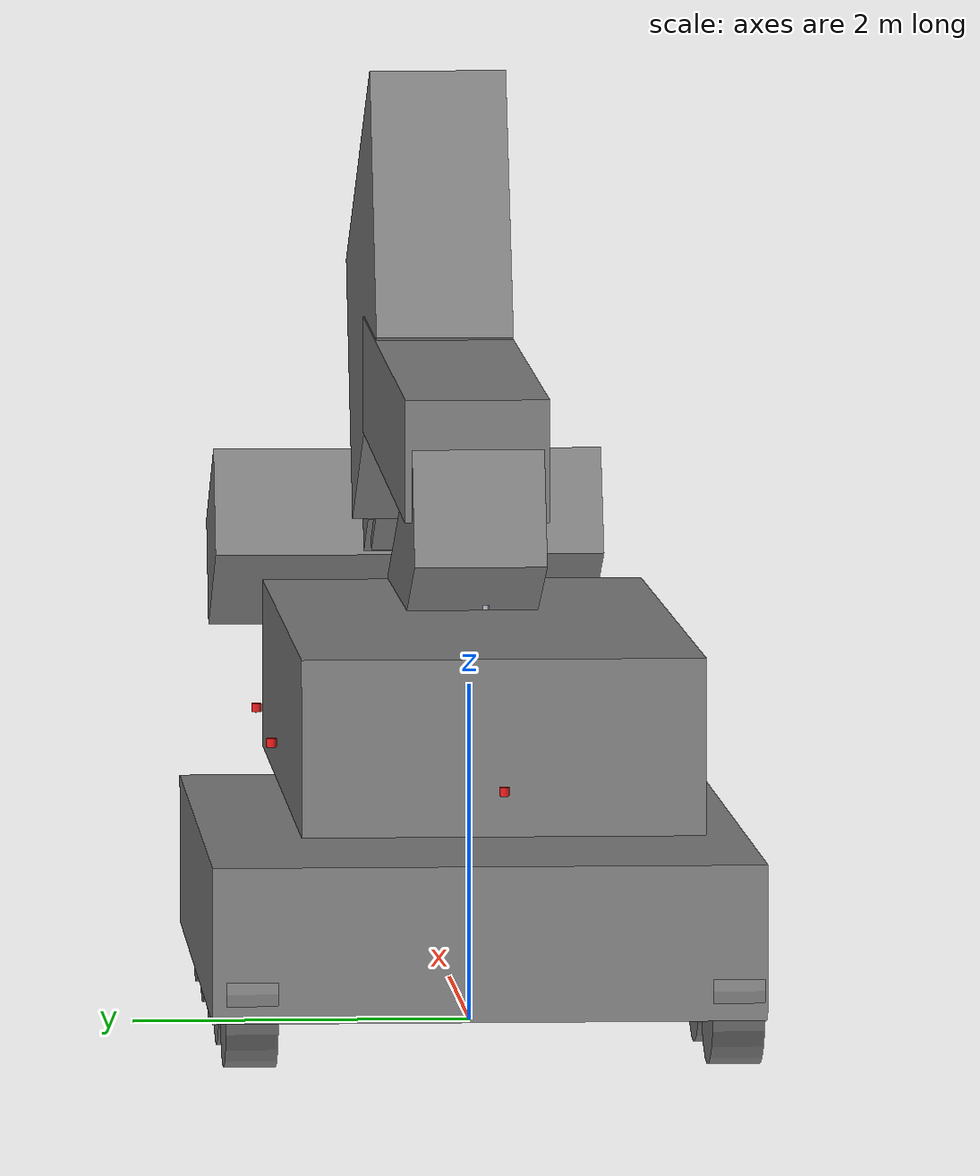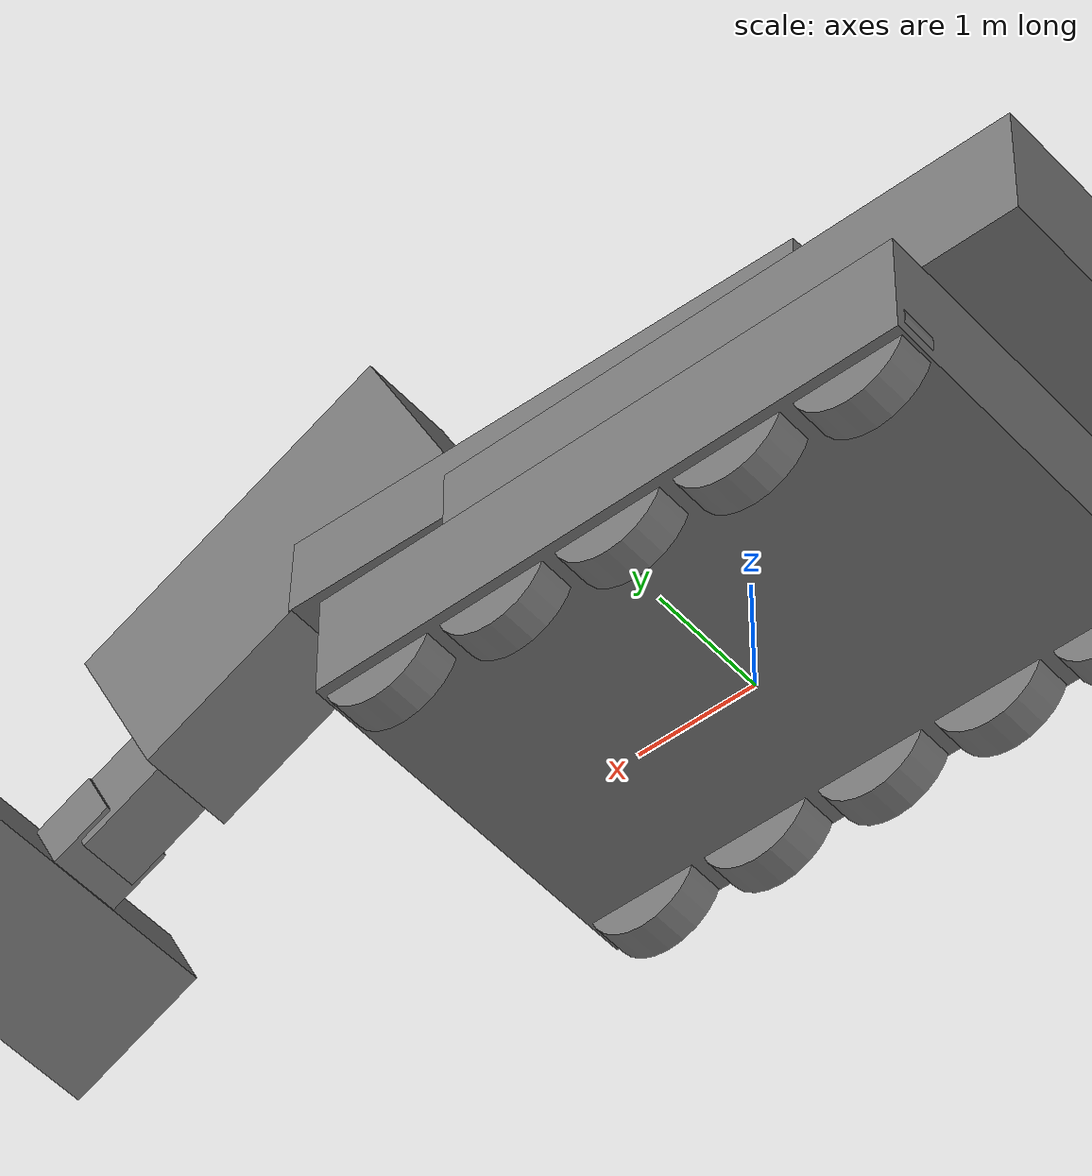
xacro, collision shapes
<?xml version="1.0" encoding="utf-8"?>
<robot name="clearing_robot" xmlns:xacro="http://ros.org/wiki/xacro">

  <xacro:include filename="$(find multimap_nav_simulation)/robot/sensors/lidar_3d.xacro"/>
  <!-- A moderate scan rate keeps the original five side sensors affordable. -->
  <xacro:property name="lidar_hz" value="10.0"/>
  <xacro:property name="lidar_samples" value="720"/>
  <xacro:property name="lidar_max_range" value="30.0"/>

  <link name="base_footprint"/>

  <joint name="base_footprint_joint" type="fixed">
    <parent link="base_link"/>
    <child link="base_footprint"/>
    <origin xyz="0 0 0" rpy="0 0 0"/>
  </joint>

  <link name="base_link">
    <inertial>
      <origin xyz="0.0110947986 0.0314803963 0.598827115" rpy="0 0 0"/>
      <mass value="13000"/>
      <inertia ixx="12116.6164" ixy="-0.0945527211" ixz="-24.048698"
               iyy="23395.8661" iyz="8.93522898" izz="32244.8535"/>
    </inertial>

    <visual>
      <origin xyz="0 0 0" rpy="0 0 0"/>
      <geometry>
        <mesh filename="file://$(find multimap_nav_simulation)/meshes/clearing_robot/base_link.STL"/>
      </geometry>
      <material name="">
        <color rgba="0.5 0.5 0.5 1"/>
      </material>
    </visual>

    <collision name="chassis_collision">
      <origin xyz="0.004 0.0325 0.75" rpy="0 0 0"/>
      <geometry><box size="4.95 3.19 0.90"/></geometry>
    </collision>

  </link>

  <link name="left_wheel_back">
    <inertial>
      <mass value="500.0"/>
      <origin xyz="0 0 0"/>
      <inertia ixx="32.55" ixy="0.0" ixz="0.0"
               iyy="57.6" iyz="0.0"
               izz="32.55"/>
    </inertial>

    <visual>
      <origin xyz="0 0 0" rpy="1.5708 0 0"/>
      <geometry>
        <cylinder length="0.3" radius="0.48"/>
      </geometry>
      <material name="">
        <color rgba="0.5 0.5 0.5 1"/>
      </material>
    </visual>

    <collision>
      <origin xyz="0 0 0" rpy="1.5708 0 0"/>
      <geometry>
        <cylinder length="0.3" radius="0.48"/>
      </geometry>
    </collision>
  </link>

  <link name="left_wheel_middle">
    <inertial>
      <mass value="500.0"/>
      <origin xyz="0 0 0"/>
      <inertia ixx="32.55" ixy="0.0" ixz="0.0"
               iyy="57.6" iyz="0.0"
               izz="32.55"/>
    </inertial>

    <visual>
      <origin xyz="0 0 0" rpy="1.5708 0 0"/>
      <geometry>
        <cylinder length="0.3" radius="0.48"/>
      </geometry>
      <material name="">
        <color rgba="0.5 0.5 0.5 1"/>
      </material>
    </visual>

    <collision>
      <origin xyz="0 0 0" rpy="1.5708 0 0"/>
      <geometry>
        <cylinder length="0.3" radius="0.48"/>
      </geometry>
    </collision>
  </link>

  <link name="left_wheel_middle1">
    <inertial>
      <mass value="500.0"/>
      <origin xyz="0 0 0"/>
      <inertia ixx="32.55" ixy="0.0" ixz="0.0"
               iyy="57.6" iyz="0.0"
               izz="32.55"/>
    </inertial>

    <visual>
      <origin xyz="0 0 0" rpy="1.5708 0 0"/>
      <geometry>
        <cylinder length="0.3" radius="0.48"/>
      </geometry>
      <material name="">
        <color rgba="0.5 0.5 0.5 1"/>
      </material>
    </visual>

    <collision>
      <origin xyz="0 0 0" rpy="1.5708 0 0"/>
      <geometry>
        <cylinder length="0.3" radius="0.48"/>
      </geometry>
    </collision>
  </link>

  <link name="left_wheel_middle2">
    <inertial>
      <mass value="500.0"/>
      <origin xyz="0 0 0"/>
      <inertia ixx="32.55" ixy="0.0" ixz="0.0"
               iyy="57.6" iyz="0.0"
               izz="32.55"/>
    </inertial>

    <visual>
      <origin xyz="0 0 0" rpy="1.5708 0 0"/>
      <geometry>
        <cylinder length="0.3" radius="0.48"/>
      </geometry>
      <material name="">
        <color rgba="0.5 0.5 0.5 1"/>
      </material>
    </visual>

    <collision>
      <origin xyz="0 0 0" rpy="1.5708 0 0"/>
      <geometry>
        <cylinder length="0.3" radius="0.48"/>
      </geometry>
    </collision>
  </link>

  <link name="left_wheel_front">
    <inertial>
      <mass value="500.0"/>
      <origin xyz="0 0 0"/>
      <inertia ixx="32.55" ixy="0.0" ixz="0.0"
               iyy="57.6" iyz="0.0"
               izz="32.55"/>
    </inertial>

    <visual>
      <origin xyz="0 0 0" rpy="1.5708 0 0"/>
      <geometry>
        <cylinder length="0.3" radius="0.48"/>
      </geometry>
      <material name="">
        <color rgba="0.5 0.5 0.5 1"/>
      </material>
    </visual>

    <collision>
      <origin xyz="0 0 0" rpy="1.5708 0 0"/>
      <geometry>
        <cylinder length="0.3" radius="0.48"/>
      </geometry>
    </collision>
  </link>

  <link name="right_wheel_back">
    <inertial>
      <mass value="500.0"/>
      <origin xyz="0 0 0"/>
      <inertia ixx="32.55" ixy="0.0" ixz="0.0"
               iyy="57.6" iyz="0.0"
               izz="32.55"/>
    </inertial>

    <visual>
      <origin xyz="0 0 0" rpy="1.5708 0 0"/>
      <geometry>
        <cylinder length="0.3" radius="0.48"/>
      </geometry>
      <material name="">
        <color rgba="0.5 0.5 0.5 1"/>
      </material>
    </visual>

    <collision>
      <origin xyz="0 0 0" rpy="1.5708 0 0"/>
      <geometry>
        <cylinder length="0.3" radius="0.48"/>
      </geometry>
    </collision>
  </link>

  <link name="right_wheel_middle">
    <inertial>
      <mass value="500.0"/>
      <origin xyz="0 0 0"/>
      <inertia ixx="32.55" ixy="0.0" ixz="0.0"
               iyy="57.6" iyz="0.0"
               izz="32.55"/>
    </inertial>

    <visual>
      <origin xyz="0 0 0" rpy="1.5708 0 0"/>
      <geometry>
        <cylinder length="0.3" radius="0.48"/>
      </geometry>
      <material name="">
        <color rgba="0.5 0.5 0.5 1"/>
      </material>
    </visual>

    <collision>
      <origin xyz="0 0 0" rpy="1.5708 0 0"/>
      <geometry>
        <cylinder length="0.3" radius="0.48"/>
      </geometry>
    </collision>
  </link>

  <link name="right_wheel_middle1">
    <inertial>
      <mass value="500.0"/>
      <origin xyz="0 0 0"/>
      <inertia ixx="32.55" ixy="0.0" ixz="0.0"
               iyy="57.6" iyz="0.0"
               izz="32.55"/>
    </inertial>

    <visual>
      <origin xyz="0 0 0" rpy="1.5708 0 0"/>
      <geometry>
        <cylinder length="0.3" radius="0.48"/>
      </geometry>
      <material name="">
        <color rgba="0.5 0.5 0.5 1"/>
      </material>
    </visual>

    <collision>
      <origin xyz="0 0 0" rpy="1.5708 0 0"/>
      <geometry>
        <cylinder length="0.3" radius="0.48"/>
      </geometry>
    </collision>
  </link>

  <link name="right_wheel_middle2">
    <inertial>
      <mass value="500.0"/>
      <origin xyz="0 0 0"/>
      <inertia ixx="32.55" ixy="0.0" ixz="0.0"
               iyy="57.6" iyz="0.0"
               izz="32.55"/>
    </inertial>

    <visual>
      <origin xyz="0 0 0" rpy="1.5708 0 0"/>
      <geometry>
        <cylinder length="0.3" radius="0.48"/>
      </geometry>
      <material name="">
        <color rgba="0.5 0.5 0.5 1"/>
      </material>
    </visual>

    <collision>
      <origin xyz="0 0 0" rpy="1.5708 0 0"/>
      <geometry>
        <cylinder length="0.3" radius="0.48"/>
      </geometry>
    </collision>
  </link>

  <link name="right_wheel_front">
    <inertial>
      <mass value="500.0"/>
      <origin xyz="0 0 0"/>
      <inertia ixx="32.55" ixy="0.0" ixz="0.0"
               iyy="57.6" iyz="0.0"
               izz="32.55"/>
    </inertial>

    <visual>
      <origin xyz="0 0 0" rpy="1.5708 0 0"/>
      <geometry>
        <cylinder length="0.3" radius="0.48"/>
      </geometry>
      <material name="">
        <color rgba="0.5 0.5 0.5 1"/>
      </material>
    </visual>

    <collision>
      <origin xyz="0 0 0" rpy="1.5708 0 0"/>
      <geometry>
        <cylinder length="0.3" radius="0.48"/>
      </geometry>
    </collision>
  </link>

  <joint name="left_wheel_front_joint" type="continuous">
    <parent link="base_link"/>
    <child link="left_wheel_front"/>
    <origin xyz="2.0 1.4 0.47" rpy="0 0 0"/>
    <axis xyz="0 1 0"/>
    <dynamics damping="2.0" friction="0.0"/>
    <!-- velocity limit is required by rqt_joint_trajectory_controller's URDF parser -->
    <limit effort="100" velocity="10"/>
  </joint>

  <joint name="left_wheel_middle_joint" type="continuous">
    <parent link="base_link"/>
    <child link="left_wheel_middle"/>
    <origin xyz="0 1.4 0.47" rpy="0 0 0"/>
    <axis xyz="0 1 0"/>
    <dynamics damping="2.0" friction="0.0"/>
    <!-- velocity limit is required by rqt_joint_trajectory_controller's URDF parser -->
    <limit effort="100" velocity="10"/>
  </joint>

  <joint name="left_wheel_middle1_joint" type="continuous">
    <parent link="base_link"/>
    <child link="left_wheel_middle1"/>
    <origin xyz="1 1.4 0.47" rpy="0 0 0"/>
    <axis xyz="0 1 0"/>
    <dynamics damping="2.0" friction="0.0"/>
    <!-- velocity limit is required by rqt_joint_trajectory_controller's URDF parser -->
    <limit effort="100" velocity="10"/>
  </joint>

  <joint name="left_wheel_middle2_joint" type="continuous">
    <parent link="base_link"/>
    <child link="left_wheel_middle2"/>
    <origin xyz="-1 1.4 0.47" rpy="0 0 0"/>
    <axis xyz="0 1 0"/>
    <dynamics damping="2.0" friction="0.0"/>
    <!-- velocity limit is required by rqt_joint_trajectory_controller's URDF parser -->
    <limit effort="100" velocity="10"/>
  </joint>

  <joint name="left_wheel_back_joint" type="continuous">
    <parent link="base_link"/>
    <child link="left_wheel_back"/>
    <origin xyz="-2.0 1.4 0.47" rpy="0 0 0"/>
    <axis xyz="0 1 0"/>
    <dynamics damping="2.0" friction="0.0"/>
    <!-- velocity limit is required by rqt_joint_trajectory_controller's URDF parser -->
    <limit effort="100" velocity="10"/>
  </joint>

  <joint name="right_wheel_back_joint" type="continuous">
    <parent link="base_link"/>
    <child link="right_wheel_back"/>
    <origin xyz="-2.0 -1.4 0.47" rpy="0 0 0"/>
    <axis xyz="0 1 0"/>
    <dynamics damping="2.0" friction="0.0"/>
    <!-- velocity limit is required by rqt_joint_trajectory_controller's URDF parser -->
    <limit effort="100" velocity="10"/>
  </joint>

  <joint name="right_wheel_middle_joint" type="continuous">
    <parent link="base_link"/>
    <child link="right_wheel_middle"/>
    <origin xyz="0 -1.4 0.47" rpy="0 0 0"/>
    <axis xyz="0 1 0"/>
    <dynamics damping="2.0" friction="0.0"/>
    <!-- velocity limit is required by rqt_joint_trajectory_controller's URDF parser -->
    <limit effort="100" velocity="10"/>
  </joint>

  <joint name="right_wheel_middle1_joint" type="continuous">
    <parent link="base_link"/>
    <child link="right_wheel_middle1"/>
    <origin xyz="1 -1.4 0.47" rpy="0 0 0"/>
    <axis xyz="0 1 0"/>
    <dynamics damping="2.0" friction="0.0"/>
    <!-- velocity limit is required by rqt_joint_trajectory_controller's URDF parser -->
    <limit effort="100" velocity="10"/>
  </joint>

  <joint name="right_wheel_middle2_joint" type="continuous">
    <parent link="base_link"/>
    <child link="right_wheel_middle2"/>
    <origin xyz="-1 -1.4 0.47" rpy="0 0 0"/>
    <axis xyz="0 1 0"/>
    <dynamics damping="2.0" friction="0.0"/>
    <!-- velocity limit is required by rqt_joint_trajectory_controller's URDF parser -->
    <limit effort="100" velocity="10"/>
  </joint>

  <joint name="right_wheel_front_joint" type="continuous">
    <parent link="base_link"/>
    <child link="right_wheel_front"/>
    <origin xyz="2.0 -1.4 0.47" rpy="0 0 0"/>
    <axis xyz="0 1 0"/>
    <dynamics damping="2.0" friction="0.0"/>
    <!-- velocity limit is required by rqt_joint_trajectory_controller's URDF parser -->
    <limit effort="100" velocity="10"/>
  </joint>

  <!-- 机械臂部分 -->
  <link name="link1">
    <inertial>
      <origin xyz="-0.26630551 -2.46152979e-17 -0.555507403" rpy="0 0 0"/>
      <mass value="6000"/>
      <inertia ixx="3404.00724" ixy="0" ixz="-689.206256"
               iyy="11159.2513" iyz="0" izz="13988.6592"/>
    </inertial>
    <visual>
      <origin xyz="0 0 0" rpy="0 0 0" />
      <geometry>
        <mesh filename="file://$(find multimap_nav_simulation)/meshes/clearing_robot/PingTai.STL" />
      </geometry>
      <material name="">
        <color rgba="0.5 0.5 0.5 1"/>
      </material>
    </visual>
    <!-- STL collisions crash gzserver in ODE ray-sensor checks. The box is
         narrower than the mesh (y +-1.4) so the rslidar_* origins stay outside. -->
    <collision>
      <origin xyz="-0.675 0 -0.357" rpy="0 0 0" />
      <geometry><box size="4.95 2.3 1.013"/></geometry>
    </collision>
  </link>

  <joint name="joint1" type="revolute">
    <origin xyz="0 0 2.313" rpy="0 0 0" />
    <parent link="base_link" />
    <child link="link1" />
    <axis xyz="0 0 1" />
    <limit lower="-3.14" upper="3.14" effort="100" velocity="5" />
  </joint>

  <link name="link2">
    <inertial>
      <origin xyz="1.27370026 -0.124614766 1.35128923e-07" rpy="0 0 0"/>
      <mass value="1280"/>
      <inertia ixx="87.7149162" ixy="43.4559098" ixz="-0.000126827583"
               iyy="704.457612" iyz="-4.32401178e-05" izz="693.266344"/>
    </inertial>
    <visual>
      <origin xyz="0 0 0" rpy="0 0 0" />
      <geometry>
        <mesh filename="file://$(find multimap_nav_simulation)/meshes/clearing_robot/DaBi.STL" />
      </geometry>
      <material name="">
        <color rgba="0.5 0.5 0.5 1"/>
      </material>
    </visual>
    <!-- Arm collisions (link2..link7) are the STL bounding boxes; STL
         collisions crash gzserver in ODE ray-sensor checks. -->
    <collision>
      <origin xyz="1.285 -0.170 0.000" rpy="0 0 0" />
      <geometry><box size="2.788 0.780 0.776"/></geometry>
    </collision>
  </link>

  <joint name="joint2" type="revolute">
    <origin xyz="1.65 0 0" rpy="-1.5708 -2.760 0" />
    <parent link="link1" />
    <child link="link2" />
    <axis xyz="0 0 1" />
    <limit lower="0" upper="1.1687" effort="100" velocity="5" />
  </joint>

  <link name="link3">
    <inertial>
      <origin xyz="2.13204457 -0.0592608975 0.00440016614" rpy="0 0 0"/>
      <mass value="1402"/>
      <inertia ixx="77.3925584" ixy="-5.23281886" ixz="0.223344386"
               iyy="1949.69327" iyz="-0.00727808857" izz="1940.91237"/>
    </inertial>
    <visual>
      <origin xyz="0 0 0" rpy="0 0 0" />
      <geometry>
        <mesh filename="file://$(find multimap_nav_simulation)/meshes/clearing_robot/zhongbi.STL" />
      </geometry>
      <material name="">
        <color rgba="0.5 0.5 0.5 1"/>
      </material>
    </visual>
    <collision>
      <origin xyz="2.250 -0.148 0.005" rpy="0 0 0" />
      <geometry><box size="4.700 0.724 0.848"/></geometry>
    </collision>
  </link>

  <joint name="joint3" type="revolute">
    <origin xyz="2.5 0 0" rpy="0 0 2.7263" />
    <parent link="link2" />
    <child link="link3" />
    <axis xyz="0 0 1" />
    <limit lower="-1.6895" upper="0" effort="100" velocity="5" />
  </joint>

  <link name="link4">
    <inertial>
      <origin xyz="0.144338 -0.627142103 -0.0396293599" rpy="0 0 0"/>
      <mass value="700"/>
      <inertia ixx="120.375335" ixy="-87.2852653" ixz="-18.0183481"
               iyy="414.556747" iyz="-9.23615827" izz="485.13141"/>
    </inertial>
    <visual>
      <origin xyz="0 0 0" rpy="0 0 0" />
      <geometry>
        <mesh filename="file://$(find multimap_nav_simulation)/meshes/clearing_robot/xiaobi.STL" />
      </geometry>
      <material name="">
        <color rgba="0.5 0.5 0.5 1"/>
      </material>
    </visual>
    <collision>
      <origin xyz="0.125 -0.727 0.003" rpy="0 0 0" />
      <geometry><box size="3.130 1.767 0.839"/></geometry>
    </collision>
  </link>

  <joint name="joint4" type="revolute">
    <origin xyz="4.5 0 0" rpy="0 0 0.4815" />
    <parent link="link3" />
    <child link="link4" />
    <axis xyz="0 0 1" />
    <limit lower="0" upper="1.6265" effort="100" velocity="5" />
  </joint>

  <link name="link5">
    <inertial>
      <origin xyz="0.183389268 0.000891158583 0.00128422761" rpy="0 0 0"/>
      <mass value="525"/>
      <inertia ixx="23.7986984" ixy="-0.0985816319" ixz="0.0870947509"
               iyy="35.612472" iyz="0.00448312687" izz="32.823992"/>
    </inertial>
    <visual>
      <origin xyz="0 0 0" rpy="0 0 0" />
      <geometry>
        <mesh filename="file://$(find multimap_nav_simulation)/meshes/clearing_robot/R2.STL" />
      </geometry>
      <material name="">
        <color rgba="0.5 0.5 0.5 1"/>
      </material>
    </visual>
    <collision>
      <origin xyz="0.235 0.000 0.000" rpy="0 0 0" />
      <geometry><box size="0.801 0.524 0.621"/></geometry>
    </collision>
  </link>

  <joint name="joint5" type="revolute">
    <origin xyz="1.855 -0.239 0" rpy="1.5708 0 0" />
    <parent link="link4" />
    <child link="link5" />
    <axis xyz="0 0 1" />
    <limit lower="-1.58" upper="1.58" effort="100" velocity="5" />
  </joint>

  <link name="link6">
    <inertial>
      <origin xyz="0.0252308586 0.17131212 -0.01393312" rpy="0 0 0"/>
      <mass value="580"/>
      <inertia ixx="30.4273422" ixy="-1.5814964" ixz="0.816006364"
               iyy="24.4154256" iyz="0.786265784" izz="21.3190364"/>
    </inertial>
    <visual>
      <origin xyz="0 0 0" rpy="0 0 0" />
      <geometry>
        <mesh filename="file://$(find multimap_nav_simulation)/meshes/clearing_robot/R1.STL" />
      </geometry>
      <material name="">
        <color rgba="0.5 0.5 0.5 1"/>
      </material>
    </visual>
    <collision>
      <origin xyz="0.037 0.136 -0.023" rpy="0 0 0" />
      <geometry><box size="0.519 0.576 0.640"/></geometry>
    </collision>
  </link>

  <joint name="joint6" type="revolute">
    <origin xyz="0.469 0 0" rpy="-1.5708 -1.5708 0" />
    <parent link="link5" />
    <child link="link6" />
    <axis xyz="0 0 1" />
    <limit lower="-1.58" upper="1.58" effort="100" velocity="3" />
  </joint>

  <link name="link7">
    <inertial>
      <origin xyz="3.26484326e-05 0.186943813 0.508338592" rpy="0 0 0"/>
      <mass value="720"/>
      <inertia ixx="92.026891" ixy="-2.52810726e-05" ixz="-1.05435695e-05"
               iyy="407.855369" iyz="-22.6800914" izz="358.651723"/>
    </inertial>
    <visual>
      <origin xyz="0 0 0" rpy="0 0 0" />
      <geometry>
        <mesh filename="file://$(find multimap_nav_simulation)/meshes/clearing_robot/candou.STL" />
      </geometry>
      <material name="">
        <color rgba="0.5 0.5 0.5 1"/>
      </material>
    </visual>
    <collision>
      <origin xyz="0.000 0.116 0.618" rpy="0 0 0" />
      <geometry><box size="2.500 0.732 1.285"/></geometry>
    </collision>
  </link>

  <joint name="joint7" type="revolute">
    <origin xyz="0 0.438 0" rpy="-1.5708 -1.5708 0" />
    <parent link="link6" />
    <child link="link7" />
    <axis xyz="0 0 1" />
    <limit lower="-3.14" upper="3.14" effort="100" velocity="3" />
  </joint>

  <!-- IMU -->
  <link name="imu_link">
    <visual>
      <geometry><box size="0.05 0.05 0.05"/></geometry>
    </visual>
  </link>

  <joint name="imu_joint" type="fixed">
    <parent link="base_link"/>
    <child link="imu_link"/>
    <origin xyz="0 0 1.65" rpy="0 0 0"/>
  </joint>

  <!-- 传动系统 -->
  <transmission name="left_back_trans">
    <type>transmission_interface/SimpleTransmission</type>
    <joint name="left_wheel_back_joint">
      <hardwareInterface>hardware_interface/velocity</hardwareInterface>
    </joint>
    <actuator name="left_back_motor">
      <hardwareInterface>hardware_interface/velocity</hardwareInterface>
      <mechanicalReduction>1</mechanicalReduction>
    </actuator>
  </transmission>

  <transmission name="left_middle_trans">
    <type>transmission_interface/SimpleTransmission</type>
    <joint name="left_wheel_middle_joint">
      <hardwareInterface>hardware_interface/velocity</hardwareInterface>
    </joint>
    <actuator name="left_middle_motor">
      <hardwareInterface>hardware_interface/velocity</hardwareInterface>
      <mechanicalReduction>1</mechanicalReduction>
    </actuator>
  </transmission>

  <transmission name="left_middle1_trans">
    <type>transmission_interface/SimpleTransmission</type>
    <joint name="left_wheel_middle1_joint">
      <hardwareInterface>hardware_interface/velocity</hardwareInterface>
    </joint>
    <actuator name="left_middle1_motor">
      <hardwareInterface>hardware_interface/velocity</hardwareInterface>
      <mechanicalReduction>1</mechanicalReduction>
    </actuator>
  </transmission>

  <transmission name="left_middle2_trans">
    <type>transmission_interface/SimpleTransmission</type>
    <joint name="left_wheel_middle2_joint">
      <hardwareInterface>hardware_interface/velocity</hardwareInterface>
    </joint>
    <actuator name="left_middle2_motor">
      <hardwareInterface>hardware_interface/velocity</hardwareInterface>
      <mechanicalReduction>1</mechanicalReduction>
    </actuator>
  </transmission>

  <transmission name="left_front_trans">
    <type>transmission_interface/SimpleTransmission</type>
    <joint name="left_wheel_front_joint">
      <hardwareInterface>hardware_interface/velocity</hardwareInterface>
    </joint>
    <actuator name="left_front_motor">
      <hardwareInterface>hardware_interface/velocity</hardwareInterface>
      <mechanicalReduction>1</mechanicalReduction>
    </actuator>
  </transmission>

  <transmission name="right_back_trans">
    <type>transmission_interface/SimpleTransmission</type>
    <joint name="right_wheel_back_joint">
      <hardwareInterface>hardware_interface/velocity</hardwareInterface>
    </joint>
    <actuator name="right_back_motor">
      <hardwareInterface>hardware_interface/velocity</hardwareInterface>
      <mechanicalReduction>1</mechanicalReduction>
    </actuator>
  </transmission>

  <transmission name="right_middle_trans">
    <type>transmission_interface/SimpleTransmission</type>
    <joint name="right_wheel_middle_joint">
      <hardwareInterface>hardware_interface/velocity</hardwareInterface>
    </joint>
    <actuator name="right_middle_motor">
      <hardwareInterface>hardware_interface/velocity</hardwareInterface>
      <mechanicalReduction>1</mechanicalReduction>
    </actuator>
  </transmission>

  <transmission name="right_middle1_trans">
    <type>transmission_interface/SimpleTransmission</type>
    <joint name="right_wheel_middle1_joint">
      <hardwareInterface>hardware_interface/velocity</hardwareInterface>
    </joint>
    <actuator name="right_middle1_motor">
      <hardwareInterface>hardware_interface/velocity</hardwareInterface>
      <mechanicalReduction>1</mechanicalReduction>
    </actuator>
  </transmission>

  <transmission name="right_middle2_trans">
    <type>transmission_interface/SimpleTransmission</type>
    <joint name="right_wheel_middle2_joint">
      <hardwareInterface>hardware_interface/velocity</hardwareInterface>
    </joint>
    <actuator name="right_middle2_motor">
      <hardwareInterface>hardware_interface/velocity</hardwareInterface>
      <mechanicalReduction>1</mechanicalReduction>
    </actuator>
  </transmission>

  <transmission name="right_front_trans">
    <type>transmission_interface/SimpleTransmission</type>
    <joint name="right_wheel_front_joint">
      <hardwareInterface>hardware_interface/velocity</hardwareInterface>
    </joint>
    <actuator name="right_front_motor">
      <hardwareInterface>hardware_interface/velocity</hardwareInterface>
      <mechanicalReduction>1</mechanicalReduction>
    </actuator>
  </transmission>

  <xacro:macro name="arm_joint_transmission" params="name">
    <transmission name="${name}_trans">
      <type>transmission_interface/SimpleTransmission</type>
      <joint name="${name}">
        <hardwareInterface>hardware_interface/PositionJointInterface</hardwareInterface>
      </joint>
      <actuator name="${name}_motor">
        <hardwareInterface>hardware_interface/PositionJointInterface</hardwareInterface>
        <mechanicalReduction>1</mechanicalReduction>
      </actuator>
    </transmission>
  </xacro:macro>
  <xacro:arm_joint_transmission name="joint1"/>
  <xacro:arm_joint_transmission name="joint2"/>
  <xacro:arm_joint_transmission name="joint3"/>
  <xacro:arm_joint_transmission name="joint4"/>
  <xacro:arm_joint_transmission name="joint5"/>
  <xacro:arm_joint_transmission name="joint6"/>
  <xacro:arm_joint_transmission name="joint7"/>

  <!-- ROS 2 控制系统 -->
  <ros2_control name="whc_control" type="system">
    <hardware>
      <plugin>gazebo_ros2_control/GazeboSystem</plugin>
    </hardware>

    <joint name="left_wheel_back_joint">
      <command_interface name="velocity"/>
      <state_interface name="position"/>
      <state_interface name="velocity"/>
    </joint>

    <joint name="left_wheel_middle_joint">
      <command_interface name="velocity"/>
      <state_interface name="position"/>
      <state_interface name="velocity"/>
    </joint>

    <joint name="left_wheel_middle1_joint">
      <command_interface name="velocity"/>
      <state_interface name="position"/>
      <state_interface name="velocity"/>
    </joint>

    <joint name="left_wheel_middle2_joint">
      <command_interface name="velocity"/>
      <state_interface name="position"/>
      <state_interface name="velocity"/>
    </joint>

    <joint name="left_wheel_front_joint">
      <command_interface name="velocity"/>
      <state_interface name="position"/>
      <state_interface name="velocity"/>
    </joint>

    <joint name="right_wheel_back_joint">
      <command_interface name="velocity"/>
      <state_interface name="position"/>
      <state_interface name="velocity"/>
    </joint>

    <joint name="right_wheel_middle_joint">
      <command_interface name="velocity"/>
      <state_interface name="position"/>
      <state_interface name="velocity"/>
    </joint>

    <joint name="right_wheel_middle1_joint">
      <command_interface name="velocity"/>
      <state_interface name="position"/>
      <state_interface name="velocity"/>
    </joint>

    <joint name="right_wheel_middle2_joint">
      <command_interface name="velocity"/>
      <state_interface name="position"/>
      <state_interface name="velocity"/>
    </joint>

    <joint name="right_wheel_front_joint">
      <command_interface name="velocity"/>
      <state_interface name="position"/>
      <state_interface name="velocity"/>
    </joint>

    <xacro:macro name="arm_ros2_joint" params="name">
      <joint name="${name}">
        <command_interface name="position"/>
        <state_interface name="position">
          <param name="initial_value">0.0</param>
        </state_interface>
        <state_interface name="velocity"/>
        <state_interface name="effort"/>
      </joint>
    </xacro:macro>
    <xacro:arm_ros2_joint name="joint1"/>
    <xacro:arm_ros2_joint name="joint2"/>
    <xacro:arm_ros2_joint name="joint3"/>
    <xacro:arm_ros2_joint name="joint4"/>
    <xacro:arm_ros2_joint name="joint5"/>
    <xacro:arm_ros2_joint name="joint6"/>
    <xacro:arm_ros2_joint name="joint7"/>
  </ros2_control>

  <!-- 为每个链接添加 Gazebo 材质定义 -->
  <gazebo reference="base_link">
    <kp>10000000.0</kp>
    <kd>10000.0</kd>
    <maxVel>0.1</maxVel>
    <minDepth>0.001</minDepth>
    <maxContacts>8</maxContacts>
    <material>Gazebo/Grey</material>
  </gazebo>

  <gazebo reference="link1">
    <material>Gazebo/Grey</material>
  </gazebo>

  <gazebo reference="link2">
    <material>Gazebo/Grey</material>
  </gazebo>

  <gazebo reference="link3">
    <material>Gazebo/Grey</material>
  </gazebo>

  <gazebo reference="link4">
    <material>Gazebo/Grey</material>
  </gazebo>

  <gazebo reference="link5">
    <material>Gazebo/Grey</material>
  </gazebo>

  <gazebo reference="link6">
    <material>Gazebo/Grey</material>
  </gazebo>

  <gazebo reference="link7">
    <material>Gazebo/Grey</material>
  </gazebo>

  <gazebo reference="right_wheel_back">
    <material>Gazebo/Grey</material>
    <fdir1>0 0 1</fdir1>
    <mu1>0.05</mu1>
    <mu2>2.0</mu2>
    <slip1>0.2</slip1>
    <slip2>0.0</slip2>
    <kp>10000000.0</kp>
    <kd>10000.0</kd>
    <maxVel>0.1</maxVel>
    <minDepth>0.001</minDepth>
    <maxContacts>8</maxContacts>
    <implicitSpringDamper>true</implicitSpringDamper>
  </gazebo>

  <gazebo reference="right_wheel_middle">
    <material>Gazebo/Grey</material>
    <fdir1>0 0 1</fdir1>
    <mu1>0.05</mu1>
    <mu2>2.0</mu2>
    <slip1>0.2</slip1>
    <slip2>0.0</slip2>
    <kp>10000000.0</kp>
    <kd>10000.0</kd>
    <maxVel>0.1</maxVel>
    <minDepth>0.001</minDepth>
    <maxContacts>8</maxContacts>
    <implicitSpringDamper>true</implicitSpringDamper>
  </gazebo>

  <gazebo reference="right_wheel_middle1">
    <material>Gazebo/Grey</material>
    <fdir1>0 0 1</fdir1>
    <mu1>0.05</mu1>
    <mu2>2.0</mu2>
    <slip1>0.2</slip1>
    <slip2>0.0</slip2>
    <kp>10000000.0</kp>
    <kd>10000.0</kd>
    <maxVel>0.1</maxVel>
    <minDepth>0.001</minDepth>
    <maxContacts>8</maxContacts>
    <implicitSpringDamper>true</implicitSpringDamper>
  </gazebo>

  <gazebo reference="right_wheel_middle2">
    <material>Gazebo/Grey</material>
    <fdir1>0 0 1</fdir1>
    <mu1>0.05</mu1>
    <mu2>2.0</mu2>
    <slip1>0.2</slip1>
    <slip2>0.0</slip2>
    <kp>10000000.0</kp>
    <kd>10000.0</kd>
    <maxVel>0.1</maxVel>
    <minDepth>0.001</minDepth>
    <maxContacts>8</maxContacts>
    <implicitSpringDamper>true</implicitSpringDamper>
  </gazebo>

  <gazebo reference="right_wheel_front">
    <material>Gazebo/Grey</material>
    <fdir1>0 0 1</fdir1>
    <mu1>0.05</mu1>
    <mu2>2.0</mu2>
    <slip1>0.2</slip1>
    <slip2>0.0</slip2>
    <kp>10000000.0</kp>
    <kd>10000.0</kd>
    <maxVel>0.1</maxVel>
    <minDepth>0.001</minDepth>
    <maxContacts>8</maxContacts>
    <implicitSpringDamper>true</implicitSpringDamper>
  </gazebo>

  <gazebo reference="left_wheel_back">
    <material>Gazebo/Grey</material>
    <fdir1>0 0 1</fdir1>
    <mu1>0.05</mu1>
    <mu2>2.0</mu2>
    <slip1>0.2</slip1>
    <slip2>0.0</slip2>
    <kp>10000000.0</kp>
    <kd>10000.0</kd>
    <maxVel>0.1</maxVel>
    <minDepth>0.001</minDepth>
    <maxContacts>8</maxContacts>
    <implicitSpringDamper>true</implicitSpringDamper>
  </gazebo>

  <gazebo reference="left_wheel_middle">
    <material>Gazebo/Grey</material>
    <fdir1>0 0 1</fdir1>
    <mu1>0.05</mu1>
    <mu2>2.0</mu2>
    <slip1>0.2</slip1>
    <slip2>0.0</slip2>
    <kp>10000000.0</kp>
    <kd>10000.0</kd>
    <maxVel>0.1</maxVel>
    <minDepth>0.001</minDepth>
    <maxContacts>8</maxContacts>
    <implicitSpringDamper>true</implicitSpringDamper>
  </gazebo>

  <gazebo reference="left_wheel_middle1">
    <material>Gazebo/Grey</material>
    <fdir1>0 0 1</fdir1>
    <mu1>0.05</mu1>
    <mu2>2.0</mu2>
    <slip1>0.2</slip1>
    <slip2>0.0</slip2>
    <kp>10000000.0</kp>
    <kd>10000.0</kd>
    <maxVel>0.1</maxVel>
    <minDepth>0.001</minDepth>
    <maxContacts>8</maxContacts>
    <implicitSpringDamper>true</implicitSpringDamper>
  </gazebo>

  <gazebo reference="left_wheel_middle2">
    <material>Gazebo/Grey</material>
    <fdir1>0 0 1</fdir1>
    <mu1>0.05</mu1>
    <mu2>2.0</mu2>
    <slip1>0.2</slip1>
    <slip2>0.0</slip2>
    <kp>10000000.0</kp>
    <kd>10000.0</kd>
    <maxVel>0.1</maxVel>
    <minDepth>0.001</minDepth>
    <maxContacts>8</maxContacts>
    <implicitSpringDamper>true</implicitSpringDamper>
  </gazebo>

  <gazebo reference="left_wheel_front">
    <material>Gazebo/Grey</material>
    <fdir1>0 0 1</fdir1>
    <mu1>0.05</mu1>
    <mu2>2.0</mu2>
    <slip1>0.2</slip1>
    <slip2>0.0</slip2>
    <kp>10000000.0</kp>
    <kd>10000.0</kd>
    <maxVel>0.1</maxVel>
    <minDepth>0.001</minDepth>
    <maxContacts>8</maxContacts>
    <implicitSpringDamper>true</implicitSpringDamper>
  </gazebo>

  <!-- 统一的 Gazebo 插件配置 -->
  <gazebo>
    <!-- Gazebo ROS 2 控制插件 -->
    <plugin name="gazebo_ros2_control" filename="libgazebo_ros2_control.so">
      <parameters>$(find multimap_nav_simulation)/config/clearing_robot.yaml</parameters>
      <ros>
        <remapping>/diff_drive_controller/cmd_vel_unstamped:=/cmd_vel</remapping>
        <remapping>/diff_drive_controller/odom:=/odom_diff_drive</remapping>
      </ros>
    </plugin>

  </gazebo>

  <gazebo reference="imu_link">
    <sensor name="imu_sensor" type="imu">
      <always_on>true</always_on>
      <update_rate>100</update_rate>
      <visualize>true</visualize>
      <imu>
        <angular_velocity>
          <x>
            <noise type="gaussian">
              <mean>0.0</mean>
              <stddev>2e-4</stddev>
              <bias_mean>0.0000075</bias_mean>
              <bias_stddev>0.0000008</bias_stddev>
            </noise>
          </x>
          <y>
            <noise type="gaussian">
              <mean>0.0</mean>
              <stddev>2e-4</stddev>
              <bias_mean>0.0000075</bias_mean>
              <bias_stddev>0.0000008</bias_stddev>
            </noise>
          </y>
          <z>
            <noise type="gaussian">
              <mean>0.0</mean>
              <stddev>2e-4</stddev>
              <bias_mean>0.0000075</bias_mean>
              <bias_stddev>0.0000008</bias_stddev>
            </noise>
          </z>
        </angular_velocity>
        <linear_acceleration>
          <x>
            <noise type="gaussian">
              <mean>0.0</mean>
              <stddev>1.7e-2</stddev>
              <bias_mean>0.1</bias_mean>
              <bias_stddev>0.001</bias_stddev>
            </noise>
          </x>
          <y>
            <noise type="gaussian">
              <mean>0.0</mean>
              <stddev>1.7e-2</stddev>
              <bias_mean>0.1</bias_mean>
              <bias_stddev>0.001</bias_stddev>
            </noise>
          </y>
          <z>
            <noise type="gaussian">
              <mean>0.0</mean>
              <stddev>1.7e-2</stddev>
              <bias_mean>0.1</bias_mean>
              <bias_stddev>0.001</bias_stddev>
            </noise>
          </z>
        </linear_acceleration>
      </imu>
      <plugin name="imu_plugin" filename="libgazebo_ros_imu_sensor.so">
        <ros>
          <namespace>/</namespace>
          <remapping>~/out:=/livox/imu_raw</remapping>
        </ros>
        <frame_name>imu_link</frame_name>
        <initial_orientation_as_reference>false</initial_orientation_as_reference>
      </plugin>
    </sensor>
  </gazebo>

  <!-- 包含激光雷达宏及实例化 -->

  <xacro:property name="PI" value="3.14159265359"/>
  <!-- ==================== 3D LiDAR Sensors ==================== -->
  <xacro:macro name="lidar_3d_fov" params="index parent x y z yaw">
    <link name="rslidar_${index}">
      <visual>
        <geometry>
          <cylinder radius="0.03" length="0.05"/>
        </geometry>
        <material name="rslidar_${index}_color">
          <color rgba="0.9 0.1 0.1 1.0"/>
        </material>
      </visual>
      <collision>
        <geometry>
          <cylinder radius="0.03" length="0.05"/>
        </geometry>
      </collision>
      <inertial>
        <mass value="0.05"/>
        <inertia ixx="0.00001" ixy="0" ixz="0" iyy="0.00001" iyz="0" izz="0.00001"/>
      </inertial>
    </link>

    <joint name="rslidar_${index}_joint" type="fixed">
      <parent link="${parent}"/>
      <child link="rslidar_${index}"/>
      <origin xyz="${x} ${y} ${z}" rpy="0 0 ${yaw}"/>
    </joint>

    <gazebo reference="rslidar_${index}">
      <material>Gazebo/Red</material>
      <sensor type="ray" name="rslidar_${index}_sensor">
        <pose>0 0 0 0 0 0</pose>
        <visualize>false</visualize>
        <update_rate>10</update_rate>
        <ray>
          <scan>
            <horizontal>
              <samples>180</samples>
              <resolution>1</resolution>
              <min_angle>${-PI/2}</min_angle>
              <max_angle>${PI/2}</max_angle>
            </horizontal>
            <vertical>
              <samples>8</samples>
              <resolution>1</resolution>
              <min_angle>${-15.0*PI/180.0}</min_angle>
              <max_angle>${15.0*PI/180.0}</max_angle>
            </vertical>
          </scan>
          <range>
            <min>0.1</min>
            <max>30.0</max>
            <resolution>0.01</resolution>
          </range>
          <noise>
            <type>gaussian</type>
            <mean>0.0</mean>
            <stddev>0.005</stddev>
          </noise>
        </ray>
        <plugin name="rslidar_${index}_plugin" filename="libgazebo_ros_ray_sensor.so">
          <ros>
            <remapping>~/out:=/rslidar_points_${index}</remapping>
          </ros>
          <output_type>sensor_msgs/PointCloud2</output_type>
          <frame_name>rslidar_${index}</frame_name>
        </plugin>
      </sensor>
    </gazebo>
  </xacro:macro>

  <!-- lidar_1: 后 -->
  <xacro:lidar_3d_fov index="1" parent="link1" x="-3.2" y="0" z="-0.6" yaw="${PI}"/>
  <!-- lidar_2: 左 -->
  <xacro:lidar_3d_fov index="2" parent="link1" x="-0.5" y="1.2" z="-0.6" yaw="${PI/2}"/>
  <!-- lidar_3: 前左 -->
  <xacro:lidar_3d_fov index="3" parent="link1" x="1.5" y="1.2" z="-0.6" yaw="${PI/4}"/>
  <!-- lidar_4: 前右 -->
  <xacro:lidar_3d_fov index="4" parent="link1" x="1.5" y="-1.2" z="-0.6" yaw="${-PI/4}"/>
  <!-- lidar_5: 右 -->
  <xacro:lidar_3d_fov index="5" parent="link1" x="-0.5" y="-1.2" z="-0.6" yaw="${-PI/2}"/>

  <!-- Fixed navigation LiDAR; the original five turret LiDARs remain available. -->
  <xacro:lidar_3d parent="base_link" xyz="-1.5 0 2.6" rpy="0 0 0"/>

  <!-- Ground-truth 3D odometry, consistent with the package's other robots. -->
  <gazebo>
    <plugin name="gazebo_ros_p3d" filename="libgazebo_ros_p3d.so">
      <ros>
        <remapping>odom:=/odom</remapping>
      </ros>
      <body_name>base_link</body_name>
      <update_rate>100</update_rate>
    </plugin>
  </gazebo>
</robot>

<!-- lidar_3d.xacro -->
<robot xmlns:xacro="http://www.ros.org/wiki/xacro">

  <xacro:property name="lidar_mass"     value="0.0307407407"/> <!-- 0.83 / 27 kg -->
  <xacro:property name="lidar_radius"   value="0.0173333333"/>
  <xacro:property name="lidar_height"   value="0.024"/>

  <!-- 激光雷达扫描参数 -->
  <xacro:property name="lidar_samples"        value="1800"/>   <!-- 每圈采样数 -->
  <xacro:property name="lidar_min_angle"      value="-3.14159"/> <!-- 水平起始角 (rad) -->
  <xacro:property name="lidar_max_angle"      value="3.14159"/>  <!-- 水平终止角 (rad) -->
  <xacro:property name="lidar_min_range"      value="0.4"/>      <!-- 最小测距 (m) -->
  <xacro:property name="lidar_max_range"      value="10.0"/>     <!-- 最大测距 (m)，与 octomap max_range 一致 -->
  <xacro:property name="lidar_range_res"      value="0.02"/>     <!-- 距离分辨率 -->
  <xacro:property name="lidar_hz"             value="100.0"/>     <!-- 扫描频率 (Hz) -->
  <xacro:property name="lidar_vert_rays"      value="16"/>       <!-- 垂直线数 -->
  <xacro:property name="lidar_vert_min_angle" value="-0.2618"/>  <!-- 垂直最小角 -15° -->
  <xacro:property name="lidar_vert_max_angle" value="0.2618"/>   <!-- 垂直最大角 +15° -->

  <xacro:macro name="lidar_3d" params="parent:=base_link xyz:='0 0 0' rpy:='0 0 0'">
    <link name="lidar_link">
      <inertial>
        <mass value="${lidar_mass}"/>
        <origin xyz="0 0 0" rpy="0 0 0"/>
        <inertia
          ixx="${lidar_mass * (3.0 * lidar_radius * lidar_radius + lidar_height * lidar_height) / 12.0}"
          iyy="${lidar_mass * (3.0 * lidar_radius * lidar_radius + lidar_height * lidar_height) / 12.0}"
          izz="${lidar_mass * lidar_radius * lidar_radius / 2.0}"
          ixy="0.0" ixz="0.0" iyz="0.0"/>
      </inertial>

      <visual>
        <origin xyz="0 0 0" rpy="0 0 0"/>
        <geometry>
          <cylinder radius="${lidar_radius}" length="${lidar_height}"/>
        </geometry>
        <material name="silver">
          <color rgba="0.7 0.7 0.75 1.0"/>
        </material>
      </visual>

      <collision>
        <origin xyz="0 0 0" rpy="0 0 0"/>
        <geometry>
          <cylinder radius="${lidar_radius}" length="${lidar_height}"/>
        </geometry>
      </collision>
    </link>

    <joint name="lidar_joint" type="fixed">
      <parent link="${parent}"/>
      <child link="lidar_link"/>
      <origin xyz="${xyz}" rpy="${rpy}"/>
    </joint>

    <!-- Gazebo 多线激光雷达插件 -->
    <gazebo reference="lidar_link">
      <sensor name="lidar_sensor" type="ray">
        <pose>0 0 0 0 0 0</pose>
        <visualize>false</visualize>
        <update_rate>${lidar_hz}</update_rate>

        <ray>
          <scan>
            <horizontal>
              <samples>${lidar_samples}</samples>
              <resolution>1</resolution>
              <min_angle>${lidar_min_angle}</min_angle>
              <max_angle>${lidar_max_angle}</max_angle>
            </horizontal>
            <vertical>
              <samples>${lidar_vert_rays}</samples>
              <resolution>1</resolution>
              <min_angle>${lidar_vert_min_angle}</min_angle>
              <max_angle>${lidar_vert_max_angle}</max_angle>
            </vertical>
          </scan>
          <range>
            <min>${lidar_min_range}</min>
            <max>${lidar_max_range}</max>
            <resolution>${lidar_range_res}</resolution>
          </range>
          <noise>
            <type>gaussian</type>
            <mean>0.0</mean>
            <stddev>0.005</stddev>
          </noise>
        </ray>

        <plugin name="lidar_controller" filename="libgazebo_ros_ray_sensor.so">
          <ros>
            <!-- 直接发布到 octomap 建图默认输入话题，无需改动启动文件 -->
            <remapping>~/out:=/points_raw</remapping>
          </ros>
          <output_type>sensor_msgs/PointCloud2</output_type>
          <frame_name>lidar_link</frame_name>
        </plugin>
      </sensor>
    </gazebo>
  </xacro:macro>

</robot>
